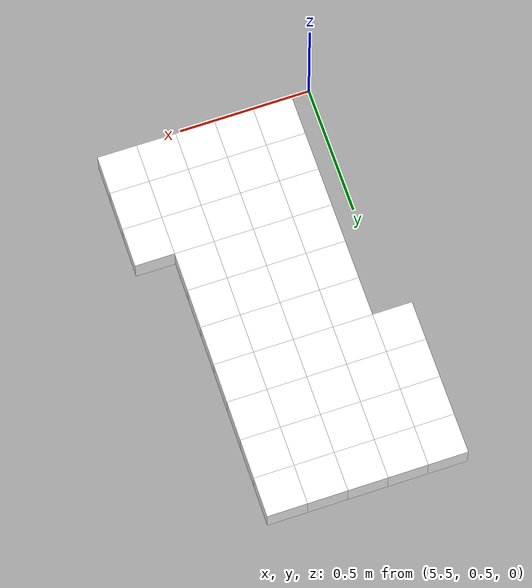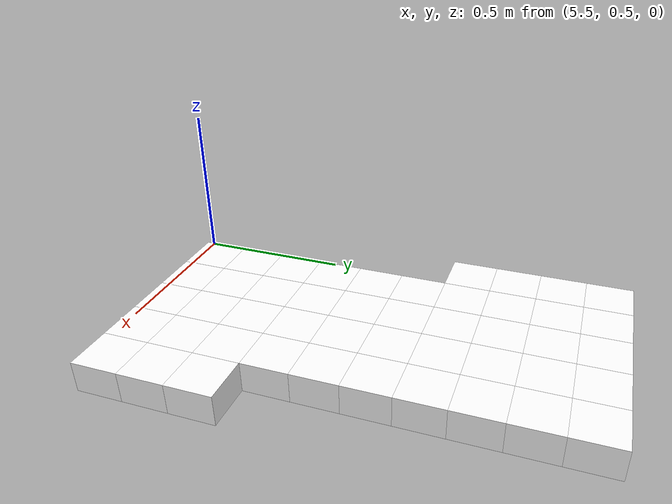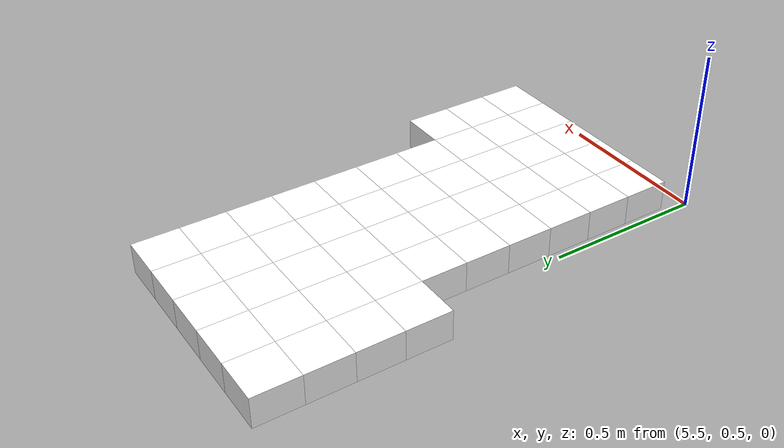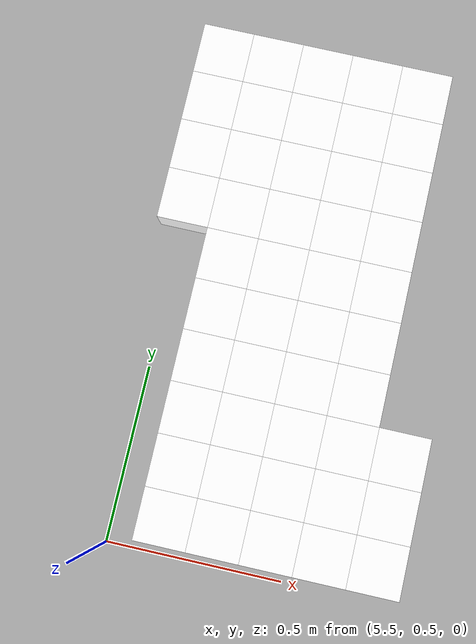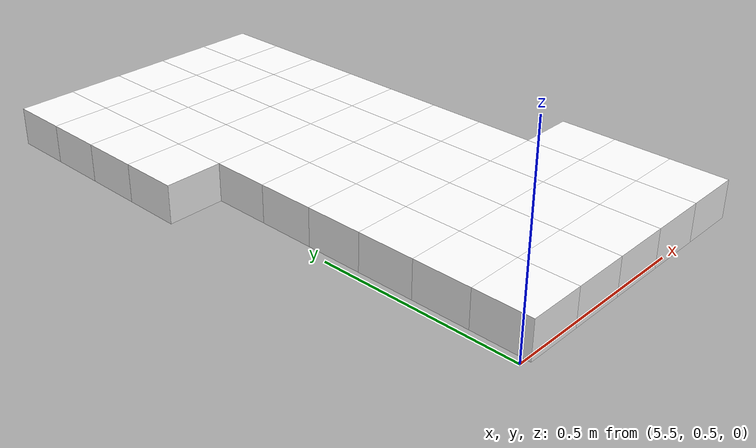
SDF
<sdf version="1.7">
 <world name="default">
  <include><uri>model://sun</uri></include>
  <model name="static_environment">
   <static>true</static>
   <link name="region_811">
    <pose>5.650000000000004 0.6 0.0 0.0 0.0 0.0</pose>
    <collision name="region_811_collision">
     <geometry><box><size>0.15 0.15 0.1</size></box></geometry>
     <surface><friction><ode><mu>1.0</mu><mu2>1.0</mu2></ode></friction></surface>
    </collision>
    <visual name="region_811_visual">
     <geometry><box><size>0.15 0.15 0.1</size></box></geometry>
     <material><ambient>1.0 1.0 1.0 1.0</ambient><diffuse>1.0 1.0 1.0 1.0</diffuse></material>
    </visual>
   </link>
   <link name="region_812">
    <pose>5.800000000000004 0.6 0.0 0.0 0.0 0.0</pose>
    <collision name="region_812_collision">
     <geometry><box><size>0.15 0.15 0.1</size></box></geometry>
     <surface><friction><ode><mu>1.0</mu><mu2>1.0</mu2></ode></friction></surface>
    </collision>
    <visual name="region_812_visual">
     <geometry><box><size>0.15 0.15 0.1</size></box></geometry>
     <material><ambient>1.0 1.0 1.0 1.0</ambient><diffuse>1.0 1.0 1.0 1.0</diffuse></material>
    </visual>
   </link>
   <link name="region_813">
    <pose>5.950000000000005 0.6 0.0 0.0 0.0 0.0</pose>
    <collision name="region_813_collision">
     <geometry><box><size>0.15 0.15 0.1</size></box></geometry>
     <surface><friction><ode><mu>1.0</mu><mu2>1.0</mu2></ode></friction></surface>
    </collision>
    <visual name="region_813_visual">
     <geometry><box><size>0.15 0.15 0.1</size></box></geometry>
     <material><ambient>1.0 1.0 1.0 1.0</ambient><diffuse>1.0 1.0 1.0 1.0</diffuse></material>
    </visual>
   </link>
   <link name="region_814">
    <pose>6.100000000000005 0.6 0.0 0.0 0.0 0.0</pose>
    <collision name="region_814_collision">
     <geometry><box><size>0.15 0.15 0.1</size></box></geometry>
     <surface><friction><ode><mu>1.0</mu><mu2>1.0</mu2></ode></friction></surface>
    </collision>
    <visual name="region_814_visual">
     <geometry><box><size>0.15 0.15 0.1</size></box></geometry>
     <material><ambient>1.0 1.0 1.0 1.0</ambient><diffuse>1.0 1.0 1.0 1.0</diffuse></material>
    </visual>
   </link>
   <link name="region_815">
    <pose>6.250000000000005 0.6 0.0 0.0 0.0 0.0</pose>
    <collision name="region_815_collision">
     <geometry><box><size>0.15 0.15 0.1</size></box></geometry>
     <surface><friction><ode><mu>1.0</mu><mu2>1.0</mu2></ode></friction></surface>
    </collision>
    <visual name="region_815_visual">
     <geometry><box><size>0.15 0.15 0.1</size></box></geometry>
     <material><ambient>1.0 1.0 1.0 1.0</ambient><diffuse>1.0 1.0 1.0 1.0</diffuse></material>
    </visual>
   </link>
   <link name="region_831">
    <pose>5.650000000000004 0.75 0.0 0.0 0.0 0.0</pose>
    <collision name="region_831_collision">
     <geometry><box><size>0.15 0.15 0.1</size></box></geometry>
     <surface><friction><ode><mu>1.0</mu><mu2>1.0</mu2></ode></friction></surface>
    </collision>
    <visual name="region_831_visual">
     <geometry><box><size>0.15 0.15 0.1</size></box></geometry>
     <material><ambient>1.0 1.0 1.0 1.0</ambient><diffuse>1.0 1.0 1.0 1.0</diffuse></material>
    </visual>
   </link>
   <link name="region_832">
    <pose>5.800000000000004 0.75 0.0 0.0 0.0 0.0</pose>
    <collision name="region_832_collision">
     <geometry><box><size>0.15 0.15 0.1</size></box></geometry>
     <surface><friction><ode><mu>1.0</mu><mu2>1.0</mu2></ode></friction></surface>
    </collision>
    <visual name="region_832_visual">
     <geometry><box><size>0.15 0.15 0.1</size></box></geometry>
     <material><ambient>1.0 1.0 1.0 1.0</ambient><diffuse>1.0 1.0 1.0 1.0</diffuse></material>
    </visual>
   </link>
   <link name="region_833">
    <pose>5.950000000000005 0.75 0.0 0.0 0.0 0.0</pose>
    <collision name="region_833_collision">
     <geometry><box><size>0.15 0.15 0.1</size></box></geometry>
     <surface><friction><ode><mu>1.0</mu><mu2>1.0</mu2></ode></friction></surface>
    </collision>
    <visual name="region_833_visual">
     <geometry><box><size>0.15 0.15 0.1</size></box></geometry>
     <material><ambient>1.0 1.0 1.0 1.0</ambient><diffuse>1.0 1.0 1.0 1.0</diffuse></material>
    </visual>
   </link>
   <link name="region_834">
    <pose>6.100000000000005 0.75 0.0 0.0 0.0 0.0</pose>
    <collision name="region_834_collision">
     <geometry><box><size>0.15 0.15 0.1</size></box></geometry>
     <surface><friction><ode><mu>1.0</mu><mu2>1.0</mu2></ode></friction></surface>
    </collision>
    <visual name="region_834_visual">
     <geometry><box><size>0.15 0.15 0.1</size></box></geometry>
     <material><ambient>1.0 1.0 1.0 1.0</ambient><diffuse>1.0 1.0 1.0 1.0</diffuse></material>
    </visual>
   </link>
   <link name="region_835">
    <pose>6.250000000000005 0.75 0.0 0.0 0.0 0.0</pose>
    <collision name="region_835_collision">
     <geometry><box><size>0.15 0.15 0.1</size></box></geometry>
     <surface><friction><ode><mu>1.0</mu><mu2>1.0</mu2></ode></friction></surface>
    </collision>
    <visual name="region_835_visual">
     <geometry><box><size>0.15 0.15 0.1</size></box></geometry>
     <material><ambient>1.0 1.0 1.0 1.0</ambient><diffuse>1.0 1.0 1.0 1.0</diffuse></material>
    </visual>
   </link>
   <link name="region_851">
    <pose>5.650000000000004 0.8999999999999999 0.0 0.0 0.0 0.0</pose>
    <collision name="region_851_collision">
     <geometry><box><size>0.15 0.15 0.1</size></box></geometry>
     <surface><friction><ode><mu>1.0</mu><mu2>1.0</mu2></ode></friction></surface>
    </collision>
    <visual name="region_851_visual">
     <geometry><box><size>0.15 0.15 0.1</size></box></geometry>
     <material><ambient>1.0 1.0 1.0 1.0</ambient><diffuse>1.0 1.0 1.0 1.0</diffuse></material>
    </visual>
   </link>
   <link name="region_852">
    <pose>5.800000000000004 0.8999999999999999 0.0 0.0 0.0 0.0</pose>
    <collision name="region_852_collision">
     <geometry><box><size>0.15 0.15 0.1</size></box></geometry>
     <surface><friction><ode><mu>1.0</mu><mu2>1.0</mu2></ode></friction></surface>
    </collision>
    <visual name="region_852_visual">
     <geometry><box><size>0.15 0.15 0.1</size></box></geometry>
     <material><ambient>1.0 1.0 1.0 1.0</ambient><diffuse>1.0 1.0 1.0 1.0</diffuse></material>
    </visual>
   </link>
   <link name="region_853">
    <pose>5.950000000000005 0.8999999999999999 0.0 0.0 0.0 0.0</pose>
    <collision name="region_853_collision">
     <geometry><box><size>0.15 0.15 0.1</size></box></geometry>
     <surface><friction><ode><mu>1.0</mu><mu2>1.0</mu2></ode></friction></surface>
    </collision>
    <visual name="region_853_visual">
     <geometry><box><size>0.15 0.15 0.1</size></box></geometry>
     <material><ambient>1.0 1.0 1.0 1.0</ambient><diffuse>1.0 1.0 1.0 1.0</diffuse></material>
    </visual>
   </link>
   <link name="region_854">
    <pose>6.100000000000005 0.8999999999999999 0.0 0.0 0.0 0.0</pose>
    <collision name="region_854_collision">
     <geometry><box><size>0.15 0.15 0.1</size></box></geometry>
     <surface><friction><ode><mu>1.0</mu><mu2>1.0</mu2></ode></friction></surface>
    </collision>
    <visual name="region_854_visual">
     <geometry><box><size>0.15 0.15 0.1</size></box></geometry>
     <material><ambient>1.0 1.0 1.0 1.0</ambient><diffuse>1.0 1.0 1.0 1.0</diffuse></material>
    </visual>
   </link>
   <link name="region_855">
    <pose>6.250000000000005 0.8999999999999999 0.0 0.0 0.0 0.0</pose>
    <collision name="region_855_collision">
     <geometry><box><size>0.15 0.15 0.1</size></box></geometry>
     <surface><friction><ode><mu>1.0</mu><mu2>1.0</mu2></ode></friction></surface>
    </collision>
    <visual name="region_855_visual">
     <geometry><box><size>0.15 0.15 0.1</size></box></geometry>
     <material><ambient>1.0 1.0 1.0 1.0</ambient><diffuse>1.0 1.0 1.0 1.0</diffuse></material>
    </visual>
   </link>
   <link name="region_871">
    <pose>5.650000000000004 1.0499999999999998 0.0 0.0 0.0 0.0</pose>
    <collision name="region_871_collision">
     <geometry><box><size>0.15 0.15 0.1</size></box></geometry>
     <surface><friction><ode><mu>1.0</mu><mu2>1.0</mu2></ode></friction></surface>
    </collision>
    <visual name="region_871_visual">
     <geometry><box><size>0.15 0.15 0.1</size></box></geometry>
     <material><ambient>1.0 1.0 1.0 1.0</ambient><diffuse>1.0 1.0 1.0 1.0</diffuse></material>
    </visual>
   </link>
   <link name="region_872">
    <pose>5.800000000000004 1.0499999999999998 0.0 0.0 0.0 0.0</pose>
    <collision name="region_872_collision">
     <geometry><box><size>0.15 0.15 0.1</size></box></geometry>
     <surface><friction><ode><mu>1.0</mu><mu2>1.0</mu2></ode></friction></surface>
    </collision>
    <visual name="region_872_visual">
     <geometry><box><size>0.15 0.15 0.1</size></box></geometry>
     <material><ambient>1.0 1.0 1.0 1.0</ambient><diffuse>1.0 1.0 1.0 1.0</diffuse></material>
    </visual>
   </link>
   <link name="region_873">
    <pose>5.950000000000005 1.0499999999999998 0.0 0.0 0.0 0.0</pose>
    <collision name="region_873_collision">
     <geometry><box><size>0.15 0.15 0.1</size></box></geometry>
     <surface><friction><ode><mu>1.0</mu><mu2>1.0</mu2></ode></friction></surface>
    </collision>
    <visual name="region_873_visual">
     <geometry><box><size>0.15 0.15 0.1</size></box></geometry>
     <material><ambient>1.0 1.0 1.0 1.0</ambient><diffuse>1.0 1.0 1.0 1.0</diffuse></material>
    </visual>
   </link>
   <link name="region_874">
    <pose>6.100000000000005 1.0499999999999998 0.0 0.0 0.0 0.0</pose>
    <collision name="region_874_collision">
     <geometry><box><size>0.15 0.15 0.1</size></box></geometry>
     <surface><friction><ode><mu>1.0</mu><mu2>1.0</mu2></ode></friction></surface>
    </collision>
    <visual name="region_874_visual">
     <geometry><box><size>0.15 0.15 0.1</size></box></geometry>
     <material><ambient>1.0 1.0 1.0 1.0</ambient><diffuse>1.0 1.0 1.0 1.0</diffuse></material>
    </visual>
   </link>
   <link name="region_891">
    <pose>5.650000000000004 1.2 0.0 0.0 0.0 0.0</pose>
    <collision name="region_891_collision">
     <geometry><box><size>0.15 0.15 0.1</size></box></geometry>
     <surface><friction><ode><mu>1.0</mu><mu2>1.0</mu2></ode></friction></surface>
    </collision>
    <visual name="region_891_visual">
     <geometry><box><size>0.15 0.15 0.1</size></box></geometry>
     <material><ambient>1.0 1.0 1.0 1.0</ambient><diffuse>1.0 1.0 1.0 1.0</diffuse></material>
    </visual>
   </link>
   <link name="region_892">
    <pose>5.800000000000004 1.2 0.0 0.0 0.0 0.0</pose>
    <collision name="region_892_collision">
     <geometry><box><size>0.15 0.15 0.1</size></box></geometry>
     <surface><friction><ode><mu>1.0</mu><mu2>1.0</mu2></ode></friction></surface>
    </collision>
    <visual name="region_892_visual">
     <geometry><box><size>0.15 0.15 0.1</size></box></geometry>
     <material><ambient>1.0 1.0 1.0 1.0</ambient><diffuse>1.0 1.0 1.0 1.0</diffuse></material>
    </visual>
   </link>
   <link name="region_893">
    <pose>5.950000000000005 1.2 0.0 0.0 0.0 0.0</pose>
    <collision name="region_893_collision">
     <geometry><box><size>0.15 0.15 0.1</size></box></geometry>
     <surface><friction><ode><mu>1.0</mu><mu2>1.0</mu2></ode></friction></surface>
    </collision>
    <visual name="region_893_visual">
     <geometry><box><size>0.15 0.15 0.1</size></box></geometry>
     <material><ambient>1.0 1.0 1.0 1.0</ambient><diffuse>1.0 1.0 1.0 1.0</diffuse></material>
    </visual>
   </link>
   <link name="region_894">
    <pose>6.100000000000005 1.2 0.0 0.0 0.0 0.0</pose>
    <collision name="region_894_collision">
     <geometry><box><size>0.15 0.15 0.1</size></box></geometry>
     <surface><friction><ode><mu>1.0</mu><mu2>1.0</mu2></ode></friction></surface>
    </collision>
    <visual name="region_894_visual">
     <geometry><box><size>0.15 0.15 0.1</size></box></geometry>
     <material><ambient>1.0 1.0 1.0 1.0</ambient><diffuse>1.0 1.0 1.0 1.0</diffuse></material>
    </visual>
   </link>
   <link name="region_911">
    <pose>5.650000000000004 1.35 0.0 0.0 0.0 0.0</pose>
    <collision name="region_911_collision">
     <geometry><box><size>0.15 0.15 0.1</size></box></geometry>
     <surface><friction><ode><mu>1.0</mu><mu2>1.0</mu2></ode></friction></surface>
    </collision>
    <visual name="region_911_visual">
     <geometry><box><size>0.15 0.15 0.1</size></box></geometry>
     <material><ambient>1.0 1.0 1.0 1.0</ambient><diffuse>1.0 1.0 1.0 1.0</diffuse></material>
    </visual>
   </link>
   <link name="region_912">
    <pose>5.800000000000004 1.35 0.0 0.0 0.0 0.0</pose>
    <collision name="region_912_collision">
     <geometry><box><size>0.15 0.15 0.1</size></box></geometry>
     <surface><friction><ode><mu>1.0</mu><mu2>1.0</mu2></ode></friction></surface>
    </collision>
    <visual name="region_912_visual">
     <geometry><box><size>0.15 0.15 0.1</size></box></geometry>
     <material><ambient>1.0 1.0 1.0 1.0</ambient><diffuse>1.0 1.0 1.0 1.0</diffuse></material>
    </visual>
   </link>
   <link name="region_913">
    <pose>5.950000000000005 1.35 0.0 0.0 0.0 0.0</pose>
    <collision name="region_913_collision">
     <geometry><box><size>0.15 0.15 0.1</size></box></geometry>
     <surface><friction><ode><mu>1.0</mu><mu2>1.0</mu2></ode></friction></surface>
    </collision>
    <visual name="region_913_visual">
     <geometry><box><size>0.15 0.15 0.1</size></box></geometry>
     <material><ambient>1.0 1.0 1.0 1.0</ambient><diffuse>1.0 1.0 1.0 1.0</diffuse></material>
    </visual>
   </link>
   <link name="region_914">
    <pose>6.100000000000005 1.35 0.0 0.0 0.0 0.0</pose>
    <collision name="region_914_collision">
     <geometry><box><size>0.15 0.15 0.1</size></box></geometry>
     <surface><friction><ode><mu>1.0</mu><mu2>1.0</mu2></ode></friction></surface>
    </collision>
    <visual name="region_914_visual">
     <geometry><box><size>0.15 0.15 0.1</size></box></geometry>
     <material><ambient>1.0 1.0 1.0 1.0</ambient><diffuse>1.0 1.0 1.0 1.0</diffuse></material>
    </visual>
   </link>
   <link name="region_930">
    <pose>5.5000000000000036 1.5 0.0 0.0 0.0 0.0</pose>
    <collision name="region_930_collision">
     <geometry><box><size>0.15 0.15 0.1</size></box></geometry>
     <surface><friction><ode><mu>1.0</mu><mu2>1.0</mu2></ode></friction></surface>
    </collision>
    <visual name="region_930_visual">
     <geometry><box><size>0.15 0.15 0.1</size></box></geometry>
     <material><ambient>1.0 1.0 1.0 1.0</ambient><diffuse>1.0 1.0 1.0 1.0</diffuse></material>
    </visual>
   </link>
   <link name="region_931">
    <pose>5.650000000000004 1.5 0.0 0.0 0.0 0.0</pose>
    <collision name="region_931_collision">
     <geometry><box><size>0.15 0.15 0.1</size></box></geometry>
     <surface><friction><ode><mu>1.0</mu><mu2>1.0</mu2></ode></friction></surface>
    </collision>
    <visual name="region_931_visual">
     <geometry><box><size>0.15 0.15 0.1</size></box></geometry>
     <material><ambient>1.0 1.0 1.0 1.0</ambient><diffuse>1.0 1.0 1.0 1.0</diffuse></material>
    </visual>
   </link>
   <link name="region_932">
    <pose>5.800000000000004 1.5 0.0 0.0 0.0 0.0</pose>
    <collision name="region_932_collision">
     <geometry><box><size>0.15 0.15 0.1</size></box></geometry>
     <surface><friction><ode><mu>1.0</mu><mu2>1.0</mu2></ode></friction></surface>
    </collision>
    <visual name="region_932_visual">
     <geometry><box><size>0.15 0.15 0.1</size></box></geometry>
     <material><ambient>1.0 1.0 1.0 1.0</ambient><diffuse>1.0 1.0 1.0 1.0</diffuse></material>
    </visual>
   </link>
   <link name="region_933">
    <pose>5.950000000000005 1.5 0.0 0.0 0.0 0.0</pose>
    <collision name="region_933_collision">
     <geometry><box><size>0.15 0.15 0.1</size></box></geometry>
     <surface><friction><ode><mu>1.0</mu><mu2>1.0</mu2></ode></friction></surface>
    </collision>
    <visual name="region_933_visual">
     <geometry><box><size>0.15 0.15 0.1</size></box></geometry>
     <material><ambient>1.0 1.0 1.0 1.0</ambient><diffuse>1.0 1.0 1.0 1.0</diffuse></material>
    </visual>
   </link>
   <link name="region_934">
    <pose>6.100000000000005 1.5 0.0 0.0 0.0 0.0</pose>
    <collision name="region_934_collision">
     <geometry><box><size>0.15 0.15 0.1</size></box></geometry>
     <surface><friction><ode><mu>1.0</mu><mu2>1.0</mu2></ode></friction></surface>
    </collision>
    <visual name="region_934_visual">
     <geometry><box><size>0.15 0.15 0.1</size></box></geometry>
     <material><ambient>1.0 1.0 1.0 1.0</ambient><diffuse>1.0 1.0 1.0 1.0</diffuse></material>
    </visual>
   </link>
   <link name="region_950">
    <pose>5.5000000000000036 1.65 0.0 0.0 0.0 0.0</pose>
    <collision name="region_950_collision">
     <geometry><box><size>0.15 0.15 0.1</size></box></geometry>
     <surface><friction><ode><mu>1.0</mu><mu2>1.0</mu2></ode></friction></surface>
    </collision>
    <visual name="region_950_visual">
     <geometry><box><size>0.15 0.15 0.1</size></box></geometry>
     <material><ambient>1.0 1.0 1.0 1.0</ambient><diffuse>1.0 1.0 1.0 1.0</diffuse></material>
    </visual>
   </link>
   <link name="region_951">
    <pose>5.650000000000004 1.65 0.0 0.0 0.0 0.0</pose>
    <collision name="region_951_collision">
     <geometry><box><size>0.15 0.15 0.1</size></box></geometry>
     <surface><friction><ode><mu>1.0</mu><mu2>1.0</mu2></ode></friction></surface>
    </collision>
    <visual name="region_951_visual">
     <geometry><box><size>0.15 0.15 0.1</size></box></geometry>
     <material><ambient>1.0 1.0 1.0 1.0</ambient><diffuse>1.0 1.0 1.0 1.0</diffuse></material>
    </visual>
   </link>
   <link name="region_952">
    <pose>5.800000000000004 1.65 0.0 0.0 0.0 0.0</pose>
    <collision name="region_952_collision">
     <geometry><box><size>0.15 0.15 0.1</size></box></geometry>
     <surface><friction><ode><mu>1.0</mu><mu2>1.0</mu2></ode></friction></surface>
    </collision>
    <visual name="region_952_visual">
     <geometry><box><size>0.15 0.15 0.1</size></box></geometry>
     <material><ambient>1.0 1.0 1.0 1.0</ambient><diffuse>1.0 1.0 1.0 1.0</diffuse></material>
    </visual>
   </link>
   <link name="region_953">
    <pose>5.950000000000005 1.65 0.0 0.0 0.0 0.0</pose>
    <collision name="region_953_collision">
     <geometry><box><size>0.15 0.15 0.1</size></box></geometry>
     <surface><friction><ode><mu>1.0</mu><mu2>1.0</mu2></ode></friction></surface>
    </collision>
    <visual name="region_953_visual">
     <geometry><box><size>0.15 0.15 0.1</size></box></geometry>
     <material><ambient>1.0 1.0 1.0 1.0</ambient><diffuse>1.0 1.0 1.0 1.0</diffuse></material>
    </visual>
   </link>
   <link name="region_954">
    <pose>6.100000000000005 1.65 0.0 0.0 0.0 0.0</pose>
    <collision name="region_954_collision">
     <geometry><box><size>0.15 0.15 0.1</size></box></geometry>
     <surface><friction><ode><mu>1.0</mu><mu2>1.0</mu2></ode></friction></surface>
    </collision>
    <visual name="region_954_visual">
     <geometry><box><size>0.15 0.15 0.1</size></box></geometry>
     <material><ambient>1.0 1.0 1.0 1.0</ambient><diffuse>1.0 1.0 1.0 1.0</diffuse></material>
    </visual>
   </link>
   <link name="region_970">
    <pose>5.5000000000000036 1.7999999999999998 0.0 0.0 0.0 0.0</pose>
    <collision name="region_970_collision">
     <geometry><box><size>0.15 0.15 0.1</size></box></geometry>
     <surface><friction><ode><mu>1.0</mu><mu2>1.0</mu2></ode></friction></surface>
    </collision>
    <visual name="region_970_visual">
     <geometry><box><size>0.15 0.15 0.1</size></box></geometry>
     <material><ambient>1.0 1.0 1.0 1.0</ambient><diffuse>1.0 1.0 1.0 1.0</diffuse></material>
    </visual>
   </link>
   <link name="region_971">
    <pose>5.650000000000004 1.7999999999999998 0.0 0.0 0.0 0.0</pose>
    <collision name="region_971_collision">
     <geometry><box><size>0.15 0.15 0.1</size></box></geometry>
     <surface><friction><ode><mu>1.0</mu><mu2>1.0</mu2></ode></friction></surface>
    </collision>
    <visual name="region_971_visual">
     <geometry><box><size>0.15 0.15 0.1</size></box></geometry>
     <material><ambient>1.0 1.0 1.0 1.0</ambient><diffuse>1.0 1.0 1.0 1.0</diffuse></material>
    </visual>
   </link>
   <link name="region_972">
    <pose>5.800000000000004 1.7999999999999998 0.0 0.0 0.0 0.0</pose>
    <collision name="region_972_collision">
     <geometry><box><size>0.15 0.15 0.1</size></box></geometry>
     <surface><friction><ode><mu>1.0</mu><mu2>1.0</mu2></ode></friction></surface>
    </collision>
    <visual name="region_972_visual">
     <geometry><box><size>0.15 0.15 0.1</size></box></geometry>
     <material><ambient>1.0 1.0 1.0 1.0</ambient><diffuse>1.0 1.0 1.0 1.0</diffuse></material>
    </visual>
   </link>
   <link name="region_973">
    <pose>5.950000000000005 1.7999999999999998 0.0 0.0 0.0 0.0</pose>
    <collision name="region_973_collision">
     <geometry><box><size>0.15 0.15 0.1</size></box></geometry>
     <surface><friction><ode><mu>1.0</mu><mu2>1.0</mu2></ode></friction></surface>
    </collision>
    <visual name="region_973_visual">
     <geometry><box><size>0.15 0.15 0.1</size></box></geometry>
     <material><ambient>1.0 1.0 1.0 1.0</ambient><diffuse>1.0 1.0 1.0 1.0</diffuse></material>
    </visual>
   </link>
   <link name="region_974">
    <pose>6.100000000000005 1.7999999999999998 0.0 0.0 0.0 0.0</pose>
    <collision name="region_974_collision">
     <geometry><box><size>0.15 0.15 0.1</size></box></geometry>
     <surface><friction><ode><mu>1.0</mu><mu2>1.0</mu2></ode></friction></surface>
    </collision>
    <visual name="region_974_visual">
     <geometry><box><size>0.15 0.15 0.1</size></box></geometry>
     <material><ambient>1.0 1.0 1.0 1.0</ambient><diffuse>1.0 1.0 1.0 1.0</diffuse></material>
    </visual>
   </link>
   <link name="region_990">
    <pose>5.5000000000000036 1.9499999999999997 0.0 0.0 0.0 0.0</pose>
    <collision name="region_990_collision">
     <geometry><box><size>0.15 0.15 0.1</size></box></geometry>
     <surface><friction><ode><mu>1.0</mu><mu2>1.0</mu2></ode></friction></surface>
    </collision>
    <visual name="region_990_visual">
     <geometry><box><size>0.15 0.15 0.1</size></box></geometry>
     <material><ambient>1.0 1.0 1.0 1.0</ambient><diffuse>1.0 1.0 1.0 1.0</diffuse></material>
    </visual>
   </link>
   <link name="region_991">
    <pose>5.650000000000004 1.9499999999999997 0.0 0.0 0.0 0.0</pose>
    <collision name="region_991_collision">
     <geometry><box><size>0.15 0.15 0.1</size></box></geometry>
     <surface><friction><ode><mu>1.0</mu><mu2>1.0</mu2></ode></friction></surface>
    </collision>
    <visual name="region_991_visual">
     <geometry><box><size>0.15 0.15 0.1</size></box></geometry>
     <material><ambient>1.0 1.0 1.0 1.0</ambient><diffuse>1.0 1.0 1.0 1.0</diffuse></material>
    </visual>
   </link>
   <link name="region_992">
    <pose>5.800000000000004 1.9499999999999997 0.0 0.0 0.0 0.0</pose>
    <collision name="region_992_collision">
     <geometry><box><size>0.15 0.15 0.1</size></box></geometry>
     <surface><friction><ode><mu>1.0</mu><mu2>1.0</mu2></ode></friction></surface>
    </collision>
    <visual name="region_992_visual">
     <geometry><box><size>0.15 0.15 0.1</size></box></geometry>
     <material><ambient>1.0 1.0 1.0 1.0</ambient><diffuse>1.0 1.0 1.0 1.0</diffuse></material>
    </visual>
   </link>
   <link name="region_993">
    <pose>5.950000000000005 1.9499999999999997 0.0 0.0 0.0 0.0</pose>
    <collision name="region_993_collision">
     <geometry><box><size>0.15 0.15 0.1</size></box></geometry>
     <surface><friction><ode><mu>1.0</mu><mu2>1.0</mu2></ode></friction></surface>
    </collision>
    <visual name="region_993_visual">
     <geometry><box><size>0.15 0.15 0.1</size></box></geometry>
     <material><ambient>1.0 1.0 1.0 1.0</ambient><diffuse>1.0 1.0 1.0 1.0</diffuse></material>
    </visual>
   </link>
   <link name="region_994">
    <pose>6.100000000000005 1.9499999999999997 0.0 0.0 0.0 0.0</pose>
    <collision name="region_994_collision">
     <geometry><box><size>0.15 0.15 0.1</size></box></geometry>
     <surface><friction><ode><mu>1.0</mu><mu2>1.0</mu2></ode></friction></surface>
    </collision>
    <visual name="region_994_visual">
     <geometry><box><size>0.15 0.15 0.1</size></box></geometry>
     <material><ambient>1.0 1.0 1.0 1.0</ambient><diffuse>1.0 1.0 1.0 1.0</diffuse></material>
    </visual>
   </link>
  </model>
 </world>
</sdf>
